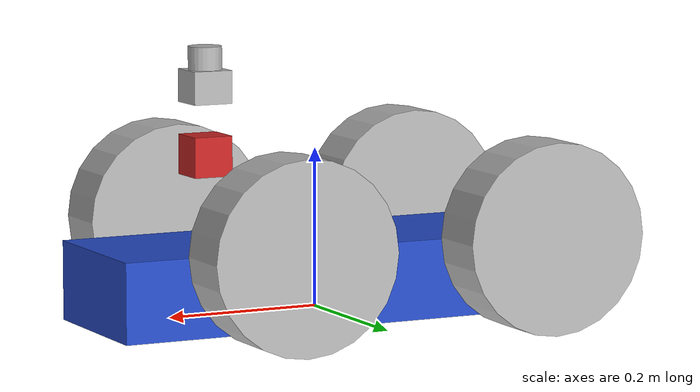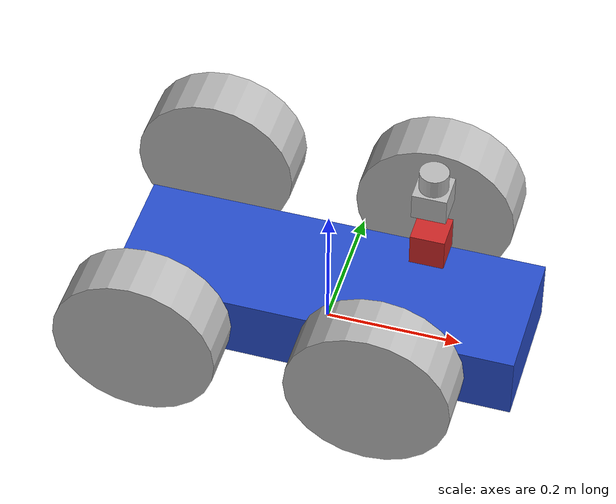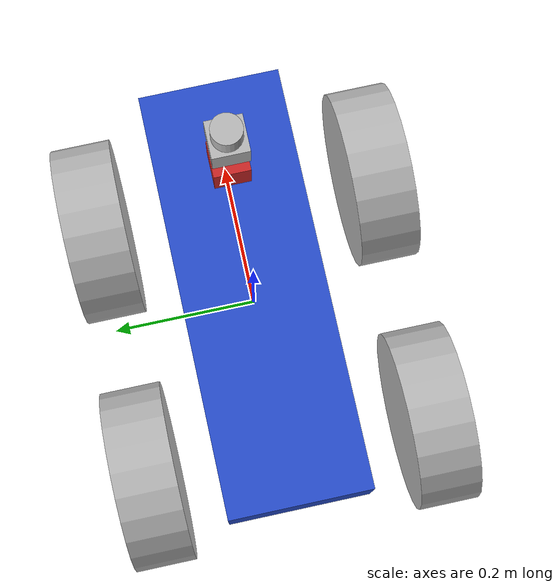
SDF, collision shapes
<?xml version='1.0'?>
<sdf version='1.4'>
  <model name="mobile_warehouse_robot">
     <!-- If true, physics engine will ignore -->
     <static>false</static>

       <!-- Add the rectangular base of the robot -->
       <link name='chassis'>

         <!--Position of the center will be: -->
         <!--x=0 meters, y=0 meters, z=0.1 meters-->
         <!--Orientation of the center will be: -->
         <!--Roll=0 rad, Pitch=0 rad, Yaw=0 rad -->
         <pose>0 0 .04 0 0 0</pose>

           <!-- Specify the shape for collisions -->
           <collision name='collision'>
             <geometry>
               <box>
                 <!-- Box is 0.6 meters in length -->
                 <!-- 0.2 meters in width -->
                 <!-- 0.4 meters in height -->
                 <size>.6 .2 .1</size>
               </box>
             </geometry>
           </collision>

           <!-- Specify the shape for visualization -->
           <visual name='visual'>
             <pose> 0 0 0.02 0 0 0 </pose>
             <material>
            <script>
                <uri>file://media/materials/scripts/gazebo.material</uri>
                <name>Gazebo/Blue</name>
            </script>
            </material>
             <geometry>
                 <box>
                    <size>.6 .2 .1</size>
                </box>
             </geometry>
           </visual>

           <!-- Add a caster wheel -->

       </link>

       <!-- Add the left wheel -->
       <link name="left_wheel">
         <pose>0.12 0.19 0.1 0 1.5707 1.5707</pose>
         <collision name="collision">
           <geometry>
             <cylinder>
               <radius>.12</radius>
               <length>.08</length>
             </cylinder>
           </geometry>
         </collision>
         <visual name="visual">
           <geometry>
             <cylinder>
               <radius>.12</radius>
               <length>.08</length>
             </cylinder>
           </geometry>
         </visual>
       </link>

       <!-- Add the right wheel -->
       <link name="right_wheel">
         <pose>0.12 -0.19 0.1 0 1.5707 1.5707</pose>
         <collision name="collision">
           <geometry>
             <cylinder>
               <radius>.12</radius>
               <length>.08</length>
             </cylinder>
           </geometry>
         </collision>
         <visual name="visual">
           <geometry>
             <cylinder>
               <radius>.12</radius>
               <length>.08</length>
             </cylinder>
           </geometry>
         </visual>
       </link>

       <!-- Add the BACK left wheel -->
       <link name="left_wheel_back">
         <pose>-0.22 0.19 0.1 0 1.5707 1.5707</pose>
         <collision name="collision">
           <geometry>
             <cylinder>
               <radius>.12</radius>
               <length>.08</length>
             </cylinder>
           </geometry>
         </collision>
         <visual name="visual">
           <geometry>
             <cylinder>
               <radius>.12</radius>
               <length>.08</length>
             </cylinder>
           </geometry>
         </visual>
       </link>

       <!-- Add the BACK right wheel -->
       <link name="right_wheel_back">
         <pose>-0.22 -0.19 0.1 0 1.5707 1.5707</pose>
         <collision name="collision">
           <geometry>
             <cylinder>
               <radius>.12</radius>
               <length>.08</length>
             </cylinder>
           </geometry>
         </collision>
         <visual name="visual">
           <geometry>
             <cylinder>
               <radius>.12</radius>
               <length>.08</length>
             </cylinder>
           </geometry>
         </visual>
       </link>

        <!-- Add the CAMERA -->
       <link name="camera">
            <inertial>
                <mass>0.1</mass>
            </inertial>
            <pose>0.15 0 0.2 0 0 0</pose>

           <collision name="cam_collision">
             <geometry>
               <box>
                 <size>0.05 0.05 0.05</size>
               </box>
             </geometry>
           </collision>

            <visual name="cam_visual">
                <geometry>
                    <box>
                        <size>0.05 0.05 0.05</size>
                    </box>
                </geometry>
                <material>
                    <script>
                        <uri>file://media/materials/scripts/gazebo.material</uri>
                        <name>Gazebo/Red</name>
                    </script>
                    </material>
            </visual>

            <sensor type="camera" name="camera1">
                <update_rate>30.0</update_rate>
                <camera name="head">
                    <horizontal_fov>1.3962634</horizontal_fov>
                    <image>
                    <width>800</width>
                    <height>800</height>
                    <format>R8G8B8</format>
                    </image>
                    <clip>
                    <near>0.02</near>
                    <far>300</far>
                    </clip>
                    <noise>
                    <type>gaussian</type>
                    <mean>0.0</mean>
                    <stddev>0.007</stddev>
                    </noise>
                </camera>
                <plugin name="camera_controller" filename="libgazebo_ros_camera.so">
                    <alwaysOn>true</alwaysOn>
                    <updateRate>1</updateRate>
                    <cameraName>rrbot/camera1</cameraName>
                    <imageTopicName>image_raw</imageTopicName>
                    <cameraInfoTopicName>camera_info</cameraInfoTopicName>
                    <frameName>camera_link</frameName>
                    <hackBaseline>0.07</hackBaseline>
                    <distortionK1>0.0</distortionK1>
                    <distortionK2>0.0</distortionK2>
                    <distortionK3>0.0</distortionK3>
                    <distortionT1>0.0</distortionT1>
                    <distortionT2>0.0</distortionT2>
                </plugin>
                </sensor>
        </link>

       <!-- Add the laser range finder -->
       <link name="laser_link">
         <inertial>
           <!-- Mass of the laser range finder in kg -->
           <mass>0.1</mass>
         </inertial>
         <!-- Position is towards the front of the robot -->
         <!-- Laser finder is mounted on top -->
         <pose>0.15 0 0.30 0 0 0</pose>

         <!-- Add a mesh to make it more visually appealing -->
         <visual name="visual">
           <geometry>
             <mesh>
               <uri>model://hokuyo/meshes/hokuyo.dae</uri>
             </mesh>
           </geometry>
         </visual>

         <!-- Collision properties of the base of the laser range finder-->
         <collision name="collision-base">
           <pose>0 0 -0.0145 0 0 0</pose>
           <geometry>
             <box>
               <size>0.05 0.05 0.041</size>
             </box>
           </geometry>
         </collision>
         <!-- Collision properties of the top of the laser range finder-->
         <collision name="collision-top">
           <pose>0 0 0.0205 0 0 0</pose>
           <geometry>
             <cylinder>
               <radius>0.021</radius>
               <length>0.029</length>
             </cylinder>
           </geometry>
         </collision>

         <!-- Describes the type and properties of the sensor -->
            <sensor name="laser" type="ray">
            <pose>0.01 0 0.0175 0 -0 0</pose>
                <ray>
                    <scan>
                    <horizontal>
                        <samples>181</samples>
                        <resolution>1</resolution>
                        <min_angle>-1.57080</min_angle>
                        <max_angle>1.57080</max_angle>
                    </horizontal>
                    </scan>
                    <range>
                    <min>0.08</min>
                    <max>10</max>
                    <resolution>0.05</resolution>
                    </range>
                </ray>
                <always_on>1</always_on>
                <update_rate>10</update_rate>
                <visualize>true</visualize>

                <plugin name='laser' filename='libgazebo_ros_ray_sensor.so'>
                    <ros>
                    <namespace>/demo</namespace>
                    <argument>--ros-args --remap ~/out:=scan</argument>
                    </ros>
                    <output_type>sensor_msgs/LaserScan</output_type>
                </plugin>
            </sensor>
       </link>

       <!-- Add motor for the left wheel -->
       <joint type="revolute" name="left_wheel_hinge">
         <pose>0 0 -0.03 0 0 0</pose>
         <child>left_wheel</child>
         <parent>chassis</parent>
         <axis>
           <xyz>0 1 0</xyz>
         </axis>
       </joint>

       <!-- Add motor for the right wheel -->
       <joint type="revolute" name="right_wheel_hinge">
         <pose>0 0 0.03 0 0 0</pose>
         <child>right_wheel</child>
         <parent>chassis</parent>
         <axis>
           <xyz>0 1 0</xyz>
         </axis>
       </joint>

       <!-- Add motor for the back left wheel -->
       <joint type="fixed" name="left_back_wheel_hinge">
         <pose>0 0 0 0 0 0</pose>
         <child>left_wheel_back</child>
         <parent>chassis</parent>
         <axis>
           <xyz>0 1 0</xyz>
         </axis>
       </joint>

       <!-- Add motor for the back right wheel -->
       <joint type="fixed" name="right_back_wheel_hinge">
         <pose>0 0 0 0 0 0</pose>
         <child>right_wheel_back</child>
         <parent>chassis</parent>
         <axis>
           <xyz>0 1 0</xyz>
         </axis>
       </joint>

       <!-- Connect laser range finder to the robot's body -->
       <joint type="fixed" name="laser_joint">
         <child>laser_link</child>
         <parent>chassis</parent>
       </joint>

       <!-- Connect camera to the robot's body -->
       <joint type="fixed" name="camera_joint">
         <child>camera</child>
         <parent>chassis</parent>
       </joint>

       <!-- Controls the differential drive robot -->
       <plugin name='diff_drive' filename='libgazebo_ros_diff_drive.so'>
         <ros>
           <namespace>/demo</namespace>
           <remapping>cmd_vel:=cmd_vel</remapping>
           <remapping>odom:=odom</remapping>
         </ros>

         <!-- wheels -->
         <left_joint>left_wheel_hinge</left_joint>
         <right_joint>right_wheel_hinge</right_joint>

         <!-- kinematics -->
         <wheel_separation>0.26</wheel_separation>
         <wheel_diameter>0.2</wheel_diameter>

         <!-- limits -->
         <max_wheel_torque>20</max_wheel_torque>
         <max_wheel_acceleration>1.0</max_wheel_acceleration>

         <!-- output -->
         <publish_odom>true</publish_odom>
         <publish_odom_tf>true</publish_odom_tf>
         <publish_wheel_tf>true</publish_wheel_tf>

         <odometry_frame>odom</odometry_frame>
         <robot_base_frame>chassis</robot_base_frame>
       </plugin>
  </model>
</sdf>
